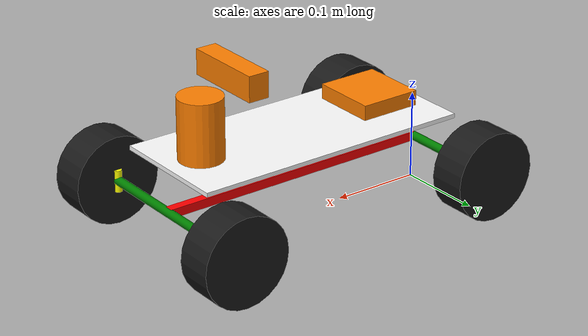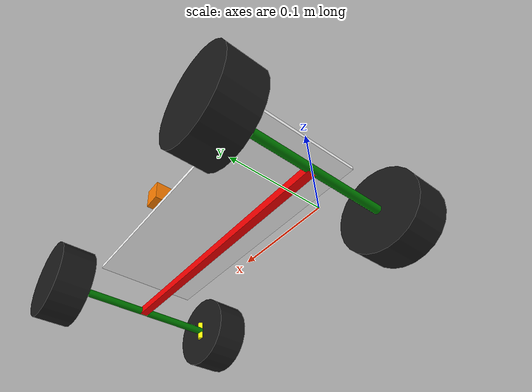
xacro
<?xml version="1.0"?>
<!-- URDF of Physical Robot -->
<robot xmlns:xacro="http://www.ros.org/wiki/xacro"  name="ugv_hunterse">
    <!-- Common -->
    <xacro:include filename="physical_description/common_properties.xacro" />
    <!-- Physical Description -->
    <xacro:include filename="physical_description/macros.xacro" />
    <xacro:include filename="physical_description/robot_base.xacro" />
    <xacro:include filename="physical_description/robot_hat.xacro" />
</robot>

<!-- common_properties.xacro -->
<robot xmlns:xacro="http://www.ros.org/wiki/xacro">

    <!-- Traxxas Ford Fiesta ST Rally VXL -->
    <xacro:property name="wheelbase" value="0.324" />

    <xacro:property name="wheel_radius" value="0.05" />
    <xacro:property name="wheel_width" value="0.043" />
    <xacro:property name="front_track" value="0.235" />
    <xacro:property name="rear_track" value="0.235" />
    <xacro:property name="max_steering_angle" value="0.5" />
    <xacro:property name="max_programmed_steering_angle" value="0.4" />

    <xacro:property name="base_mass" value="2.8"/>
    <xacro:property name="wheel_mass" value="0.06"/>
    <xacro:property name="platform_mass" value="1.2"/>

    <xacro:property name="platform_height" value="0.005"/>

    <!-- COLORS -->
    <material name="white">
        <color rgba="1.0 1.0 1.0 1" />
    </material>
    <material name="black">
        <color rgba="0.1 0.1 0.1 1" />
    </material>
    <material name="grey">
        <color rgba="0.5 0.5 0.5 1" />
    </material>
    <material name="red">
        <color rgba="1.0 0.0 0 1" />
    </material>
    <material name="green">
        <color rgba="0.0 0.5 0 1" />
    </material>
    <material name="blue">
        <color rgba="0 0 0.5 1" />
    </material>
    <material name="yellow">
        <color rgba="1.0 1.0 0 1" />
    </material>
    <material name="orange">
        <color rgba="1.0 0.5 0 1" />
    </material>

    <!-- INERTIAS -->
    <xacro:macro name="box_inertia" params="m l w h xyz rpy">
        <inertial>
            <origin xyz="${xyz}" rpy="${rpy}" />
            <mass value="${m}" />
            <inertia ixx="${(m/12) * (h*h + l*l)}" ixy="0" ixz="0"
                     iyy="${(m/12) * (w*w + l*l)}" iyz="0"
                     izz="${(m/12) * (w*w + h*h)}" />
        </inertial>
    </xacro:macro>

    <xacro:macro name="cylinder_inertia" params="m r h xyz rpy">
        <inertial>
            <origin xyz="${xyz}" rpy="${rpy}" />
            <mass value="${m}" />
            <inertia ixx="${(m/12) * (3*r*r + h*h)}" ixy="0" ixz="0"
                     iyy="${(m/12) * (3*r*r + h*h)}" iyz="0"
                     izz="${(m/2) * (r*r)}" />
        </inertial>
    </xacro:macro>

    <xacro:macro name="sphere_inertia" params="m r xyz rpy">
        <inertial>
            <origin xyz="${xyz}" rpy="${rpy}" />
            <mass value="${m}" />
            <inertia ixx="${(2/5) * m * r * r}" ixy="0" ixz="0"
                     iyy="${(2/5) * m * r * r}" iyz="0"
                     izz="${(2/5) * m * r * r}" />
        </inertial>
    </xacro:macro>

</robot>

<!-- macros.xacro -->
<robot xmlns:xacro="http://www.ros.org/wiki/xacro">
    <!-- PHYSICAL DESCRIPTION MACROS -->
    <xacro:macro name="wheel_link" params="prefix">
        <link name="${prefix}_wheel_link">
            <visual>
                <geometry>
                    <cylinder radius="${wheel_radius}" length="${wheel_width}" />
                </geometry>
                <origin xyz="0 0 0" rpy="${pi / 2} 0 0" />
                <material name="black" />
            </visual>
            <collision>
                <geometry>
                    <cylinder radius="${wheel_radius}" length="${wheel_width}" />
                </geometry>
                <origin xyz="0 0 0" rpy="${pi / 2} 0 0" />
            </collision>
            <xacro:cylinder_inertia m="0.05" r="${2*wheel_radius}" h="${2*wheel_width}"
                                    xyz="0 0 0" rpy="${pi / 2} 0 0" />
        </link>
    </xacro:macro>

    <xacro:macro name="steering_link" params="prefix">
        <link name="${prefix}_steering_link">
            <visual>
                <geometry>
                    <cylinder radius="${wheel_width * 0.1}" length="${wheel_radius * 0.5}" />
                </geometry>
                <origin xyz="0 0 0" rpy="0 0 0" />
                <material name="yellow" />
            </visual>
            <collision>
                <geometry>
                    <cylinder radius="${0.005}" length="${0.01}" />
                </geometry>
                <origin xyz="0 0 0" rpy="0 0 0" />
            </collision>
            <xacro:cylinder_inertia m="0.001" r="${2*0.005}" h="${2*0.01}"
                                    xyz="0 0 0" rpy="0 0 0" />
        </link>
    </xacro:macro>
</robot>

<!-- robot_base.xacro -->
<robot xmlns:xacro="http://www.ros.org/wiki/xacro">

    <!-- FOOTPRINT (Projection of rear axle center on the ground)-->
    <link name="base_footprint"></link>
    <!-- BASE LINK (Center between front and rear axle) -->
    <link name="base_link">
        <visual>
            <origin xyz="0 0 0" rpy="0 0 0" />
            <geometry>
                <box size="${wheelbase} 0.01 0.01"/>
            </geometry>
            <material name="red" />
        </visual>
    </link>
    <joint name="base_joint" type="fixed">
        <parent link="base_footprint" />
        <child link="base_link" />
        <origin xyz="${wheelbase / 2} 0 ${wheel_radius}" rpy="0 0 0" />
    </joint>

    <!-- REAR AXLE & WHEELS -->
    <link name="rear_axle_link">
        <visual>
            <origin xyz="0 0 0" rpy="${pi/2} 0 0" />
            <geometry>
                <cylinder length="${rear_track}" radius="0.005" />
            </geometry>
            <material name="green" />
        </visual>
    </link>
    <joint name="rear_axle_joint" type="fixed">
        <parent link="base_link" />
        <child link="rear_axle_link" />
        <origin xyz="${-(wheelbase) / 2} 0 0" rpy="0 0 0" />
    </joint>
    <!-- BR Wheel -->
    <xacro:wheel_link prefix="rear_right" />
    <joint name="rear_right_wheel_joint" type="continuous">
        <parent link="rear_axle_link" />
        <child link="rear_right_wheel_link" />
        <origin xyz="0 ${-(rear_track / 2)} 0" rpy="0 0 0" />
        <axis xyz="0 1 0" />
    </joint>
    <!-- BL Wheel -->
    <xacro:wheel_link prefix="rear_left" />
    <joint name="rear_left_wheel_joint" type="continuous">
        <parent link="rear_axle_link" />
        <child link="rear_left_wheel_link" />
        <origin xyz="0 ${(rear_track / 2)} 0" rpy="0 0 0" />
        <axis xyz="0 1 0" />
    </joint>

    <!-- FRONT AXLE & WHEELS -->
    <link name="front_axle_link">
        <visual>
            <origin xyz="0 0 0" rpy="${pi/2} 0 0" />
            <geometry>
                <cylinder length="${front_track}" radius="0.005" />
            </geometry>
            <material name="green" />
        </visual>
    </link>
    <joint name="front_axle_joint" type="fixed">
        <parent link="base_link" />
        <child link="front_axle_link" />
        <origin xyz="${wheelbase / 2} 0 0" rpy="0 0 0" />
    </joint>
    <!-- FR Wheel -->
    <xacro:steering_link prefix="front_right" />
    <joint name="front_right_steer_joint" type="revolute">
        <parent link="front_axle_link" />
        <child link="front_right_steering_link" />
        <origin xyz="0 ${-((front_track / 2)-(wheel_width / 2))} 0" rpy="0 0 0" />
        <axis xyz="0 0 1" />
        <limit lower="-${max_steering_angle}" upper="${max_steering_angle}" effort="200" velocity="20" />
    </joint>
    <xacro:wheel_link prefix="front_right" />
    <joint name="front_right_wheel_joint" type="continuous">
        <parent link="front_right_steering_link" />
        <child link="front_right_wheel_link" />
        <origin xyz="0 ${-(wheel_width / 2)} 0" rpy="0 0 0" />
        <axis xyz="0 1 0" />
    </joint>
    <!-- FL Wheel -->
    <xacro:steering_link prefix="front_left" />
    <joint name="front_left_steer_joint" type="revolute">
        <parent link="front_axle_link" />
        <child link="front_left_steering_link" />
        <origin xyz="0 ${((front_track / 2)-(wheel_width / 2))} 0" rpy="0 0 0" />
        <axis xyz="0 0 1" />
        <limit lower="-${max_steering_angle}" upper="${max_steering_angle}" effort="200" velocity="20" />
    </joint>
    <xacro:wheel_link prefix="front_left" />
    <joint name="front_left_wheel_joint" type="continuous">
        <parent link="front_left_steering_link" />
        <child link="front_left_wheel_link" />
        <origin xyz="0 ${wheel_width / 2} 0" rpy="0 0 0" />
        <axis xyz="0 1 0" />
    </joint>
</robot>

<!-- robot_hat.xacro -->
<robot xmlns:xacro="http://www.ros.org/wiki/xacro">
    <!-- PLATFORM BASE -->
    <link name="platform_link">
        <visual>
            <origin xyz="0 0 ${-(platform_height / 2)}" rpy="0 0 0"/>
             <geometry>
                <box size="${wheelbase} ${rear_track * 0.6} ${platform_height}"/>
            </geometry>
            <material name="white"/>
        </visual>
    </link>
    <joint name="hat_link_joint" type="fixed">
        <parent link="base_link"/>
        <child link="platform_link"/>
        <origin xyz="0 0 0.05" rpy="0 0 0"/>
    </joint>

    <!-- LIDAR SENSOR -->
    <!-- Hokuyo UST-10LX (Perception is at 47.4 mm from base)-->
    <xacro:property name="ust_10lx_perception_height" value="0.0474" />
    <link name="lidar_hky_link">
        <visual>
            <origin xyz="0 0 ${(0.07/2) - ust_10lx_perception_height}" rpy="0 0 0"/>
            <geometry>
                <cylinder radius="0.025" length="0.07"/>
            </geometry>
            <material name="orange"/>
        </visual>
    </link>
    <joint name="lidar_hky_link_joint" type="fixed">
        <parent link="platform_link"/>
        <child link="lidar_hky_link"/>
        <origin xyz="0.12 0 ${ust_10lx_perception_height + 0}" rpy="0 0 0"/>
    </joint>

    <!-- IMU SENSOR -->
    <!-- VESC 6 MKVI -->
    <link name="imu_vesc_link">
        <visual>
            <origin xyz="0 0 0" rpy="0 0 0"/>
            <geometry>
                <box size="0.07 0.075 0.017"/>
            </geometry>
            <material name="orange"/>
        </visual>
    </link>
    <joint name="imu_vesc_link_joint" type="fixed">
        <parent link="platform_link"/>
        <child link="imu_vesc_link"/>
        <origin xyz="-0.1 0 0.01428" rpy="0 0 0"/>
    </joint>

    <!-- CAMERA SENSOR -->
    <!-- Logitech C920 -->
    <link name="camera_c920_link">
        <visual>
            <origin xyz="0 0 0" rpy="0 0 0"/>
            <geometry>
                <box size="0.02412 0.09333 0.02886"/>
            </geometry>
            <material name="orange"/>
        </visual>
    </link>
    <joint name="camera_c920_link_joint" type="fixed">
        <parent link="platform_link"/>
        <child link="camera_c920_link"/>
        <origin xyz="0.08 0 0.085" rpy="0 0 0"/>
    </joint>

</robot>
